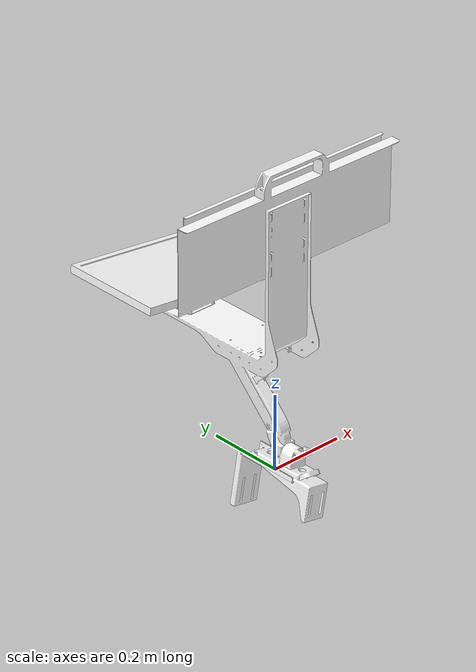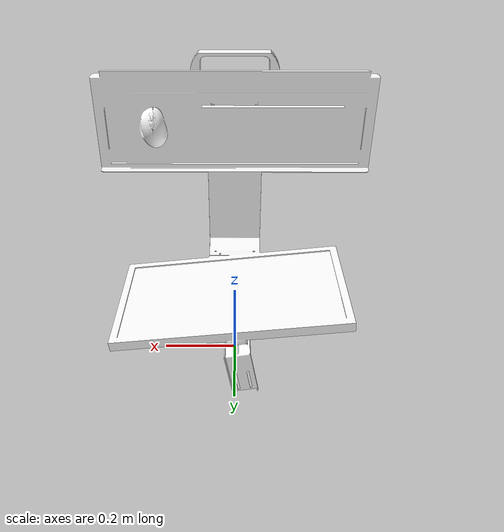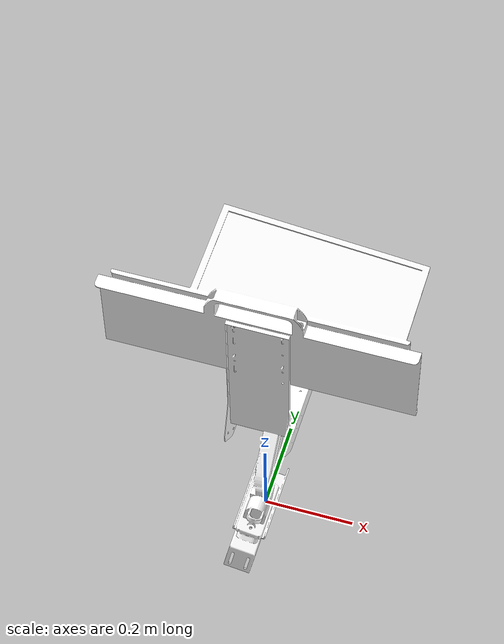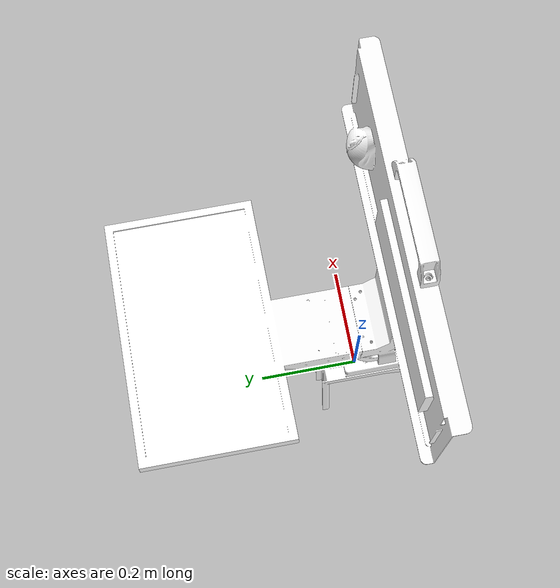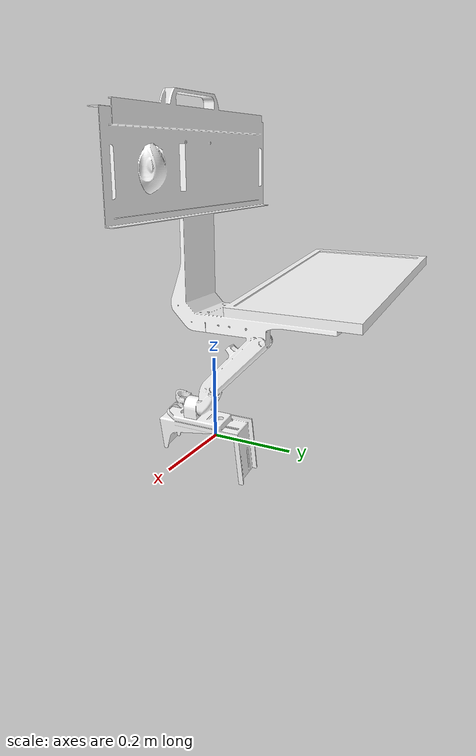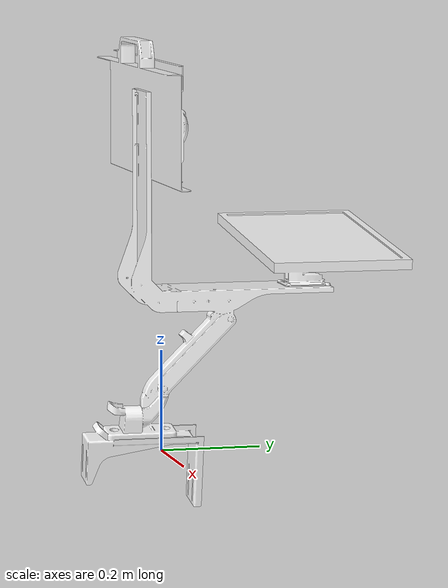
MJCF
<mujoco model="computer">
	<compiler angle="radian" strippath="true" autolimits="true" inertiafromgeom="true" />
	<include file="../common/default.xml" />

    <asset>
        <mesh name="pc" file="../assets/pc.stl" scale="0.001 0.001 0.001" />
    </asset>

	<worldbody>
		<body name="pc">
			<geom name="pc" type="mesh" mesh="pc" pos="0 0 0" euler="0 0 0" class="collision" />
			<inertial mass="32.47137420881847" pos="-0.0015432477069013144 0.1722588237064439 0.4326314304401153"/>
		</body>
	</worldbody>
</mujoco>

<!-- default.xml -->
<mujoco>
    <default>

        <default class="ur5e">
            <material specular="0.5" shininess="0.25"/>
            <joint axis="0 1 0" range="-6.28319 6.28319" armature="0.1"/>
            <general gaintype="fixed" biastype="affine" ctrlrange="-6.2831 6.2831" gainprm="2000" biasprm="0 -2000 -200" forcerange="-150 150"/>
            <site size="0.001" rgba="0.5 0.5 0.5 0.3" group="4"/>
        </default>

        <default class="visual">
            <geom type="mesh" contype="0" conaffinity="0" group="2" rgba="1 1 1 1"/>
        </default>

        <default class="collision">
            <geom  type="mesh" contype="1" conaffinity="1" group="2" rgba="1 1 1 1"/>
        </default>
    </default>
</mujoco>
